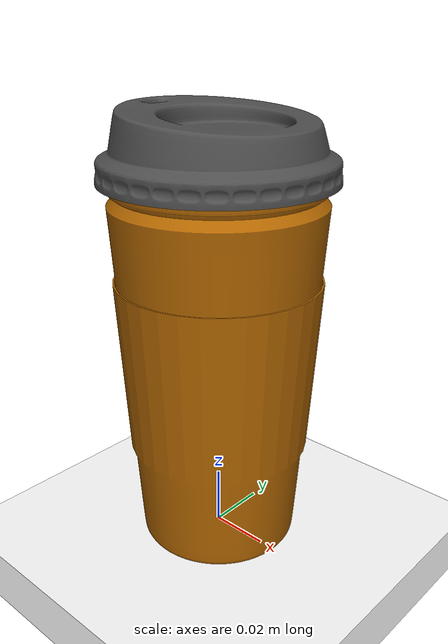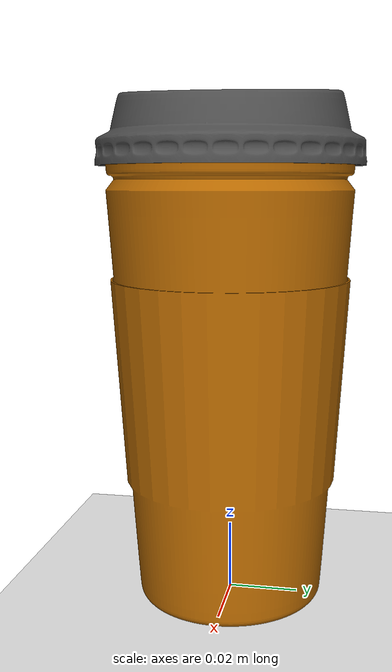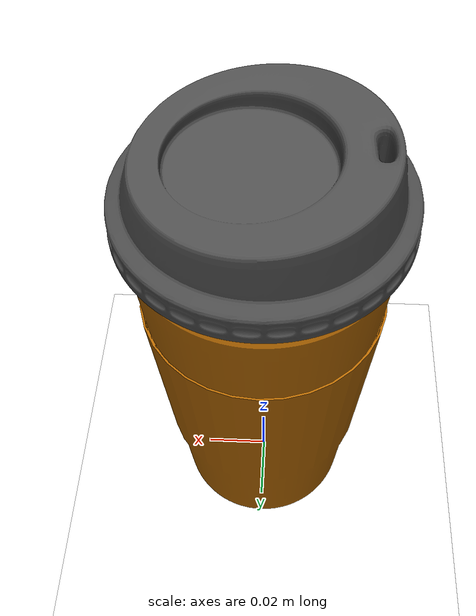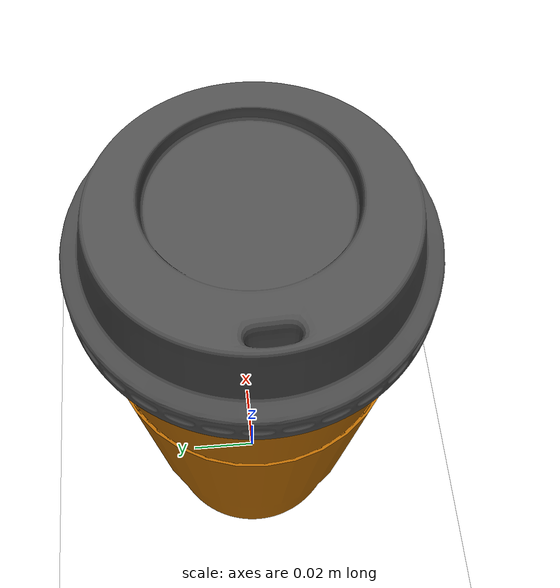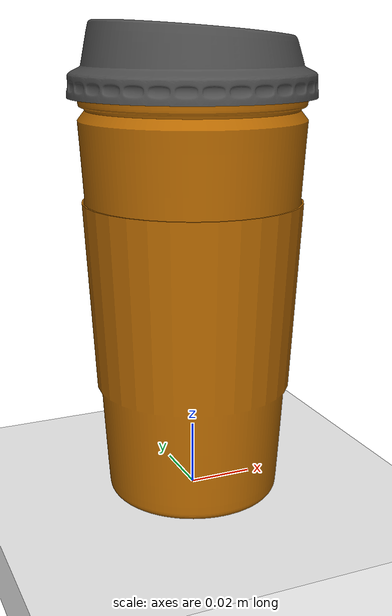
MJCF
<mujoco>
    <include file="cuplid_cup.xml" />
    <include file="cuplid_lid.xml" />

    <!-- Define a new body for the table -->
    <worldbody>
        <body name="table" pos="0 0 -0.01">
            <geom type="box" size="0.2 0.2 0.01" rgba="1 1 1 1"/> <!-- White table -->
        </body>
    </worldbody>
</mujoco>

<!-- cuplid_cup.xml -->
<mujoco>
    <asset>
        <mesh name="cuplid_cup" file="cuplid_cup.stl" scale="0.75 0.75 1"/>
    </asset>
    <worldbody>
        <body name="cuplid_cup" pos="0.0 0.0 0.0" quat="1.0 0.0 0.0 0.0">
            <geom type="mesh" name="cuplid_cup" mesh="cuplid_cup" pos="0 0 0.0"               rgba="0.7 0.4 0 1" contype="0" conaffinity="0"/>
            <geom name="cuplid_cup_collision" type="cylinder" pos="0 0 0.065" size="0.032 0.06"   rgba="1 0 0 0" friction="1 0.005 0.0001"/>
            <geom name="cuplid_cup_collision_1" type="box" pos="0 0 0.055" size="0.032 0.02 0.05" rgba="1 0 0 0" friction="1 0.005 0.0001"/>
            <geom name="cuplid_cup_collision_2" type="box" pos="0 0 0.055" size="0.02 0.032 0.05" rgba="1 0 0 0" friction="1 0.005 0.0001"/>
            <joint name="cuplid_cup_joint" type="free"/>
            <inertial pos="0 0 0" mass="0.005" diaginertia="0.002 0.002 0.002" />
        </body>
    </worldbody>

</mujoco>

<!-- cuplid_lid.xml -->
<mujoco>
    <asset>
        <mesh name="cuplid_lid" file="cuplid_lid.stl" scale="0.73 0.73 1" />
        <mesh name="cuplid_lid_0_collision" file="cuplid_lid_edge_0.stl" scale="0.64 0.64 1" />
        <mesh name="cuplid_lid_1_collision" file="cuplid_lid_edge_1.stl" scale="0.64 0.64 1" />
        <mesh name="cuplid_lid_2_collision" file="cuplid_lid_edge_2.stl" scale="0.64 0.64 1" />
        <mesh name="cuplid_lid_3_collision" file="cuplid_lid_edge_3.stl" scale="0.64 0.64 1" />
        <mesh name="cuplid_lid_4_collision" file="cuplid_lid_edge_4.stl" scale="0.64 0.64 1" />
        <mesh name="cuplid_lid_5_collision" file="cuplid_lid_edge_5.stl" scale="0.64 0.64 1" />
        <mesh name="cuplid_lid_6_collision" file="cuplid_lid_edge_6.stl" scale="0.64 0.64 1" />
        <mesh name="cuplid_lid_7_collision" file="cuplid_lid_edge_7.stl" scale="0.64 0.64 1" />
    </asset>
    <worldbody>
        <body name="cuplid_lid" pos="0.0 0.0 0.0" quat="1.0 0.0 0.0 0.0">
            <geom type="mesh" name="cuplid_lid" mesh="cuplid_lid" rgba="0.3 0.3 0.3 1" contype="0" conaffinity="0" pos="0 0 -0.003"/>
            <geom name="cuplid_lid_cylinder_collision" type="cylinder" pos="0 0 0.13" size="0.04 0.005" rgba="0 1 0 0" />
            <geom name="cuplid_lid_0_collision" type="mesh" mesh="cuplid_lid_0_collision" pos="0.0 0.0 -0.007" rgba="1 0 0 0" mass="0.001" />
            <geom name="cuplid_lid_1_collision" type="mesh" mesh="cuplid_lid_1_collision" pos="0.0 0.0 -0.007" rgba="1 0 0 0" mass="0.001" />
            <geom name="cuplid_lid_2_collision" type="mesh" mesh="cuplid_lid_2_collision" pos="0.0 0.0 -0.007" rgba="1 0 0 0" mass="0.001" />
            <geom name="cuplid_lid_3_collision" type="mesh" mesh="cuplid_lid_3_collision" pos="0.0 0.0 -0.007" rgba="1 0 0 0" mass="0.001" />
            <geom name="cuplid_lid_4_collision" type="mesh" mesh="cuplid_lid_4_collision" pos="0.0 0.0 -0.007" rgba="1 0 0 0" mass="0.001" />
            <geom name="cuplid_lid_5_collision" type="mesh" mesh="cuplid_lid_5_collision" pos="0.0 0.0 -0.007" rgba="1 0 0 0" mass="0.001" />
            <geom name="cuplid_lid_6_collision" type="mesh" mesh="cuplid_lid_6_collision" pos="0.0 0.0 -0.007" rgba="1 0 0 0" mass="0.001" />
            <geom name="cuplid_lid_7_collision" type="mesh" mesh="cuplid_lid_7_collision" pos="0.0 0.0 -0.007" rgba="1 0 0 0" mass="0.001" />
            <joint name="cuplid_lid_joint" type="free" />
            <inertial pos="0 0 0" mass="0.001" diaginertia="0.002 0.002 0.002" />
        </body>
    </worldbody>

</mujoco>
